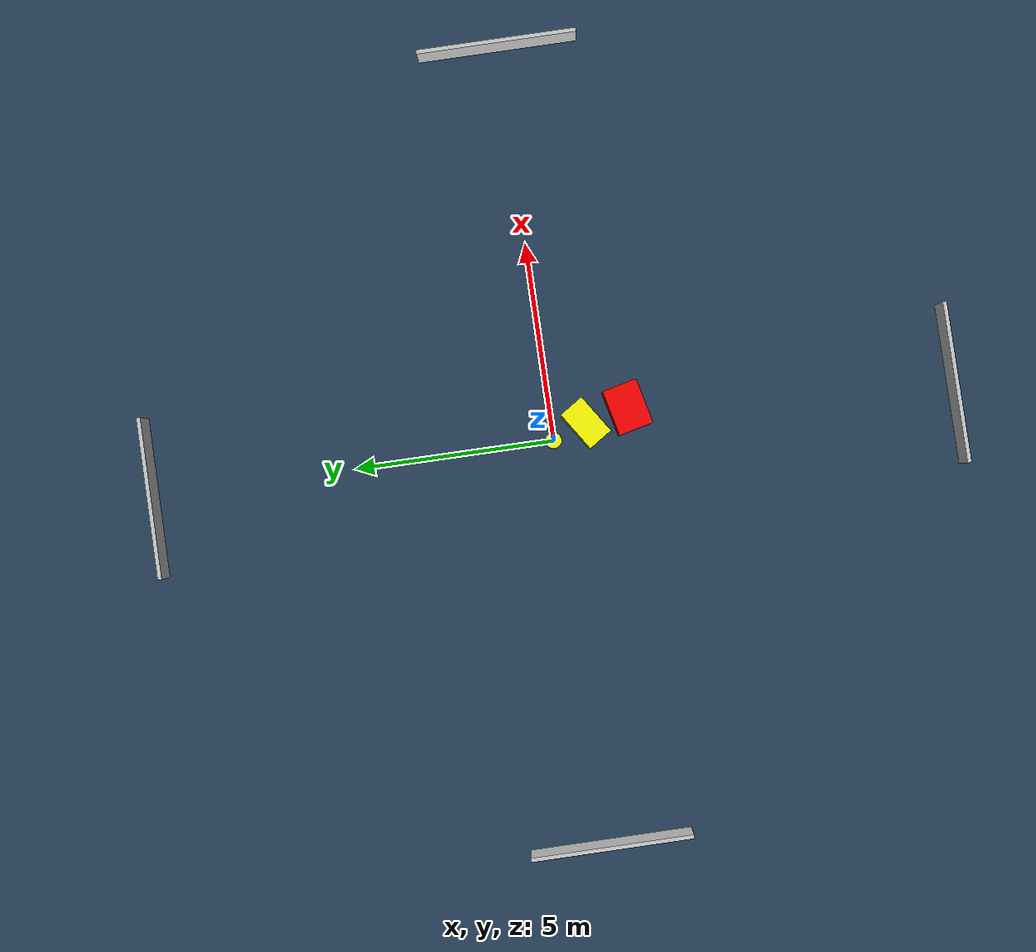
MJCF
<?xml version="1.0" ?>
<mujoco model="generated_environment">
  <option timestep="0.01" integrator="RK4" cone="elliptic"/>
  <default>
    <geom density="1"/>
  </default>
  <asset>
    <texture builtin="gradient" height="3072" name="skybox" rgb1="0.3 0.5 0.7" rgb2="0 0 0" type="skybox" width="512"/>
    <texture builtin="checker" height="300" name="groundplane" rgb1="0.2 0.3 0.4" rgb2="0.1 0.2 0.3" type="2d" width="300"/>
    <material name="groundplane" reflectance="0.2" texrepeat="5 5" texture="groundplane"/>
  </asset>
  <worldbody>
    <light dir="0 0 -1" directional="true" pos="0 0 1.5"/>
    <geom condim="3" friction="0.5 0.005 0.001" material="groundplane" name="floor" pos="0 0 0" size="0 0 0.05" type="plane"/>
    <body name="walls">
      <geom name="wall_1" condim="4" pos="-10.0 0.0 0.3" rgba="0.800000011920929 0.800000011920929 0.800000011920929 1.0" size="0.05 2.0 0.3" type="box"/>
      <geom name="wall_2" condim="4" pos="10.0 0.0 0.3" rgba="0.800000011920929 0.800000011920929 0.800000011920929 1.0" size="0.05 2.0 0.3" type="box"/>
      <geom name="wall_3" condim="4" pos="0.0 -10.0 0.3" rgba="0.800000011920929 0.800000011920929 0.800000011920929 1.0" size="2.0 0.05 0.3" type="box"/>
      <geom name="wall_4" condim="4" pos="0.0 10.0 0.3" rgba="0.800000011920929 0.800000011920929 0.800000011920929 1.0" size="2.0 0.05 0.3" type="box"/>
    </body>
    <body name="robot">
      <joint name="joint_x" type="slide" pos="0 0 0" axis="1 0 0"/>
      <joint name="joint_y" type="slide" pos="0 0 0" axis="0 1 0"/>
      <geom name="robot" type="cylinder" pos="0.0 0.0 0.2" size="0.2 0.2 0.0" mass="5.0" friction="1.0 0.005 0.0001" condim="4" rgba="1.0 1.0 0.0 1.0"/>
    </body>
    <body name="obstacle_1_movable">
      <geom name="obstacle_1_movable" condim="4" pos="0.3067009750065944 -0.8454181341270431 0.3" euler="0 0 213.07809605864406" friction="0.0 0.005 0.001" rgba="1.0 1.0 0.0 1.0" size="0.5490721219314507 0.33902502182794436 0.3" type="box" mass="0.1"/>
      <joint type="free"/>
    </body>
    <body name="obstacle_2_static">
      <geom name="obstacle_2_static" condim="4" pos="0.5438856618945056 -1.9157006746892562 0.3" euler="0 0 192.95153197372642" friction="0.0 0.005 0.001" rgba="1.0 0.0 0.0 1.0" size="0.576323144488244 0.44110182872005244 0.3" type="box"/>
    </body>
  </worldbody>
  <actuator>
    <motor name="actuator_x" joint="joint_x" gear="1" ctrlrange="-1 1"/>
    <motor name="actuator_y" joint="joint_y" gear="1" ctrlrange="-1 1"/>
  </actuator>
</mujoco>
